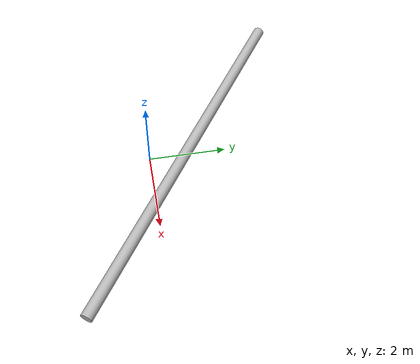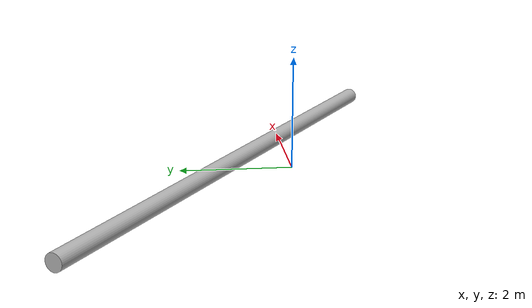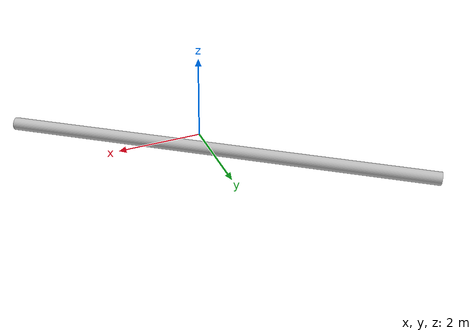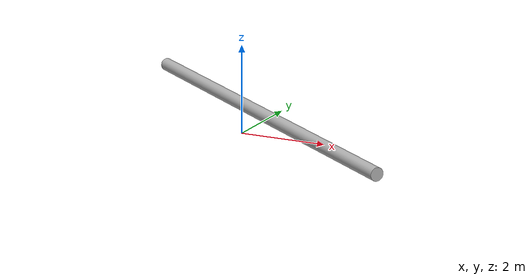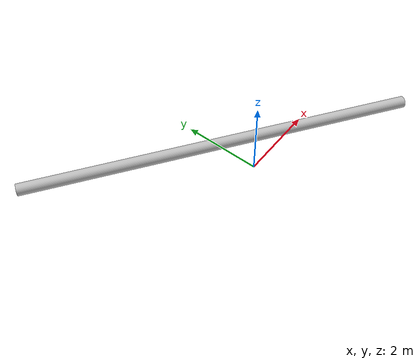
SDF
<?xml version="1.0"?>
<sdf version="1.6">
  <model name="new_tube">
    <static>true</static>
    <link name="tube_link">
      <visual name="visual_tube">
        <cast_shadows>true</cast_shadows>
        <geometry>
          <mesh>
            <uri>model://cbrTube/meshes/tube.dae</uri>
          </mesh>
        </geometry>
        <material>
          <script>
            <uri>model://cbrTube/materials/scripts</uri>
            <uri>model://cbrTube/materials/textures</uri>
            <name>tube/color</name>
          </script>
        </material>
      </visual>
      <collision name="collision_tube">
        <geometry>
          <mesh>
            <uri>model://cbrTube/meshes/tube.dae</uri>
          </mesh>
        </geometry>
      </collision>
    </link>
  </model>
</sdf>
